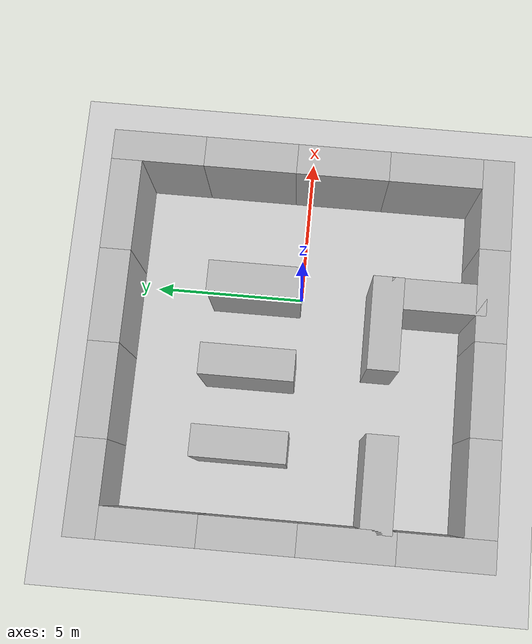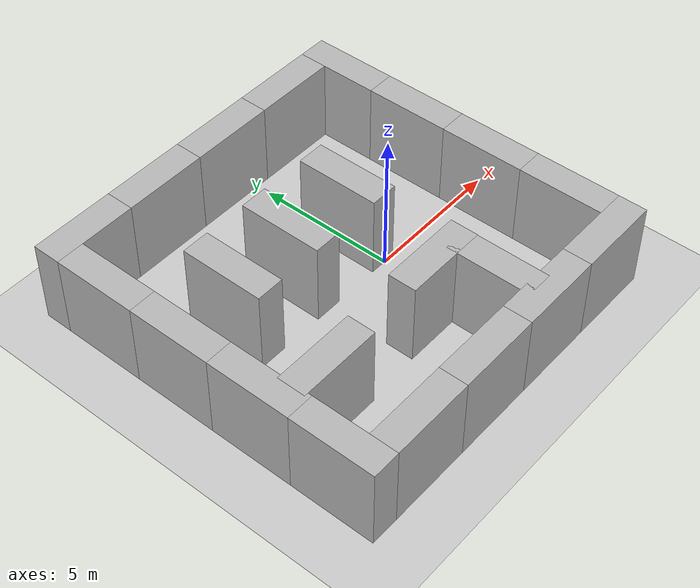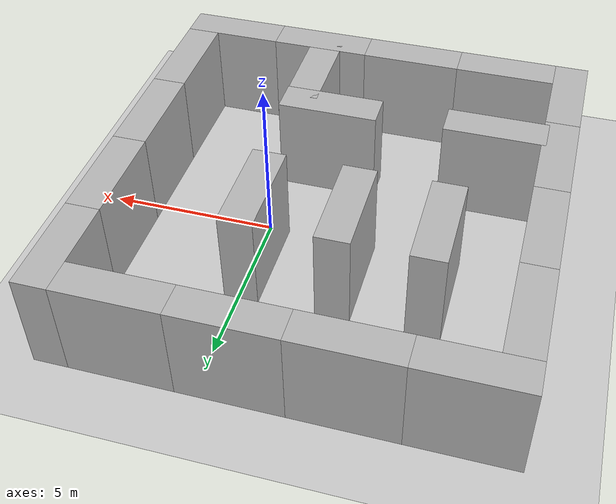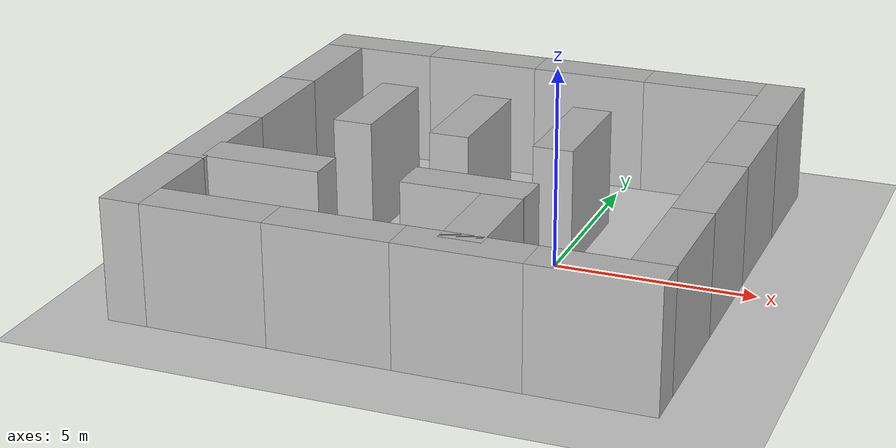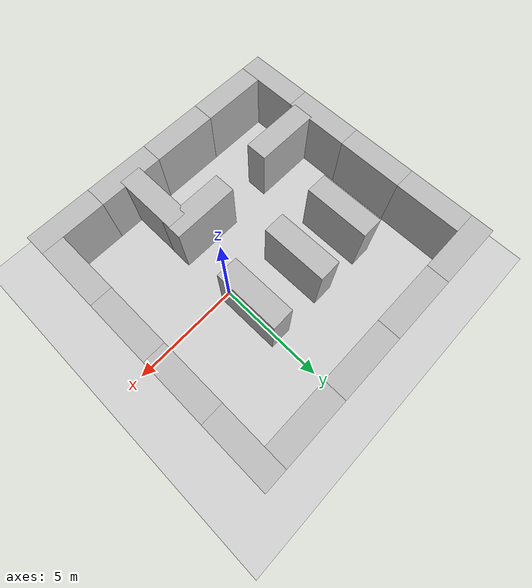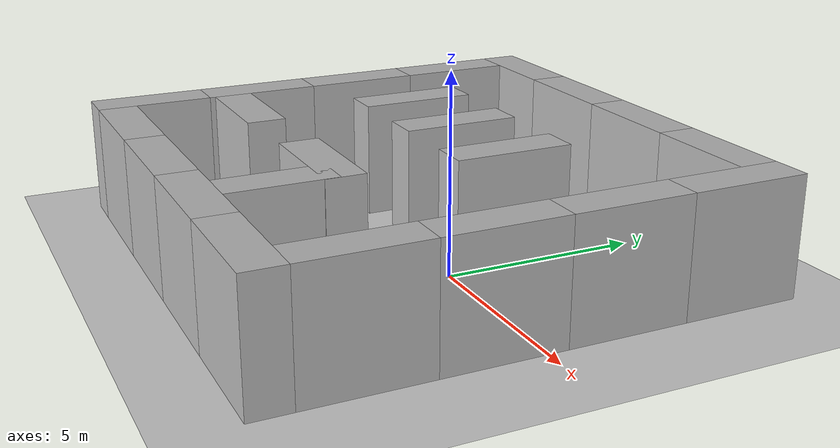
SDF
<sdf version="1.6">
 <world name="default">
  <light name="sun" type="directional">
   <pose>0 0 10 0 -0 0</pose>
   <diffuse>0.8 0.8 0.8 1</diffuse>
   <specular>0.2 0.2 0.2 1</specular>
   <attenuation>
    <range>1000</range>
    <constant>0.9</constant>
    <linear>0.01</linear>
    <quadratic>0.001</quadratic>
   </attenuation>
   <direction>-0.5 0.1 -0.9</direction>
  </light>
  <model name="ground_plane">
   <static>1</static>
   <link name="link">
    <collision name="collision">
     <geometry><plane><normal>0 0 1</normal><size>100 100</size></plane></geometry>
     <surface><friction><ode><mu>100</mu><mu2>50</mu2></ode></friction></surface>
    </collision>
    <visual name="visual">
     <cast_shadows>0</cast_shadows>
     <geometry><plane><normal>0 0 1</normal><size>100 100</size></plane></geometry>
     <material>
      <script><uri>file://media/materials/scripts/gazebo.material</uri><name>Gazebo/Grey</name></script>
     </material>
    </visual>
    <velocity_decay><linear>0</linear><angular>0</angular></velocity_decay>
   </link>
  </model>
  <physics name="default_physics" default="0" type="ode">
   <max_step_size>0.001</max_step_size>
   <real_time_factor>1</real_time_factor>
   <real_time_update_rate>1000</real_time_update_rate>
  </physics>
  <scene><ambient>0.4 0.4 0.4 1</ambient><background>0.7 0.7 0.7 1</background><shadows>1</shadows></scene>
  <spherical_coordinates>
   <surface_model>EARTH_WGS84</surface_model>
   <latitude_deg>0</latitude_deg>
   <longitude_deg>0</longitude_deg>
   <elevation>0</elevation>
   <heading_deg>0</heading_deg>
  </spherical_coordinates>
  <model name="brick_box_3x1x3">
   <static>1</static>
   <link name="chassis">
    <pose>0 0 1.5 0 -0 0</pose>
    <collision name="collision"><geometry><box><size>3 1 3</size></box></geometry></collision>
    <visual name="visual">
     <geometry><mesh><uri>model://brick_box_3x1x3/meshes/simple_box.dae</uri><scale>3 1 3</scale></mesh></geometry>
     <material>
      <script>
       <uri>model://brick_box_3x1x3/materials/scripts</uri>
       <uri>model://brick_box_3x1x3/materials/textures</uri>
       <name>BrickBox/Diffuse</name>
      </script>
     </material>
    </visual>
    <velocity_decay><linear>0</linear><angular>0</angular></velocity_decay>
   </link>
   <pose>-1 6 0 0 -0 0</pose>
  </model>
  <model name="brick_box_3x1x3_0">
   <static>1</static>
   <link name="chassis">
    <pose>0 0 1.5 0 -0 0</pose>
    <collision name="collision"><geometry><box><size>3 1 3</size></box></geometry></collision>
    <visual name="visual">
     <geometry><mesh><uri>model://brick_box_3x1x3/meshes/simple_box.dae</uri><scale>3 1 3</scale></mesh></geometry>
     <material>
      <script>
       <uri>model://brick_box_3x1x3/materials/scripts</uri>
       <uri>model://brick_box_3x1x3/materials/textures</uri>
       <name>BrickBox/Diffuse</name>
      </script>
     </material>
    </visual>
    <velocity_decay><linear>0</linear><angular>0</angular></velocity_decay>
   </link>
   <pose>2 6 0 0 -0 0</pose>
  </model>
  <model name="brick_box_3x1x3_1">
   <static>1</static>
   <link name="chassis">
    <pose>0 0 1.5 0 -0 0</pose>
    <collision name="collision"><geometry><box><size>3 1 3</size></box></geometry></collision>
    <visual name="visual">
     <geometry><mesh><uri>model://brick_box_3x1x3/meshes/simple_box.dae</uri><scale>3 1 3</scale></mesh></geometry>
     <material>
      <script>
       <uri>model://brick_box_3x1x3/materials/scripts</uri>
       <uri>model://brick_box_3x1x3/materials/textures</uri>
       <name>BrickBox/Diffuse</name>
      </script>
     </material>
    </visual>
    <velocity_decay><linear>0</linear><angular>0</angular></velocity_decay>
   </link>
   <pose>3 -6 0 0 -0 0</pose>
  </model>
  <model name="brick_box_3x1x3_2">
   <static>1</static>
   <link name="chassis">
    <pose>0 0 1.5 0 -0 0</pose>
    <collision name="collision"><geometry><box><size>3 1 3</size></box></geometry></collision>
    <visual name="visual">
     <geometry><mesh><uri>model://brick_box_3x1x3/meshes/simple_box.dae</uri><scale>3 1 3</scale></mesh></geometry>
     <material>
      <script>
       <uri>model://brick_box_3x1x3/materials/scripts</uri>
       <uri>model://brick_box_3x1x3/materials/textures</uri>
       <name>BrickBox/Diffuse</name>
      </script>
     </material>
    </visual>
    <velocity_decay><linear>0</linear><angular>0</angular></velocity_decay>
   </link>
   <pose>4 -4 0 0 0 -1.5708</pose>
  </model>
  <model name="brick_box_3x1x3_3">
   <static>1</static>
   <link name="chassis">
    <pose>0 0 1.5 0 -0 0</pose>
    <collision name="collision"><geometry><box><size>3 1 3</size></box></geometry></collision>
    <visual name="visual">
     <geometry><mesh><uri>model://brick_box_3x1x3/meshes/simple_box.dae</uri><scale>3 1 3</scale></mesh></geometry>
     <material>
      <script>
       <uri>model://brick_box_3x1x3/materials/scripts</uri>
       <uri>model://brick_box_3x1x3/materials/textures</uri>
       <name>BrickBox/Diffuse</name>
      </script>
     </material>
    </visual>
    <velocity_decay><linear>0</linear><angular>0</angular></velocity_decay>
   </link>
   <pose>4 -1 0 0 0 -1.5708</pose>
  </model>
  <model name="brick_box_3x1x3_4">
   <static>1</static>
   <link name="chassis">
    <pose>0 0 1.5 0 -0 0</pose>
    <collision name="collision"><geometry><box><size>3 1 3</size></box></geometry></collision>
    <visual name="visual">
     <geometry><mesh><uri>model://brick_box_3x1x3/meshes/simple_box.dae</uri><scale>3 1 3</scale></mesh></geometry>
     <material>
      <script>
       <uri>model://brick_box_3x1x3/materials/scripts</uri>
       <uri>model://brick_box_3x1x3/materials/textures</uri>
       <name>BrickBox/Diffuse</name>
      </script>
     </material>
    </visual>
    <velocity_decay><linear>0</linear><angular>0</angular></velocity_decay>
   </link>
   <pose>4 2 0 0 0 -1.5708</pose>
  </model>
  <model name="brick_box_3x1x3_5">
   <static>1</static>
   <link name="chassis">
    <pose>0 0 1.5 0 -0 0</pose>
    <collision name="collision"><geometry><box><size>3 1 3</size></box></geometry></collision>
    <visual name="visual">
     <geometry><mesh><uri>model://brick_box_3x1x3/meshes/simple_box.dae</uri><scale>3 1 3</scale></mesh></geometry>
     <material>
      <script>
       <uri>model://brick_box_3x1x3/materials/scripts</uri>
       <uri>model://brick_box_3x1x3/materials/textures</uri>
       <name>BrickBox/Diffuse</name>
      </script>
     </material>
    </visual>
    <velocity_decay><linear>0</linear><angular>0</angular></velocity_decay>
   </link>
   <pose>4 5 0 0 0 -1.5708</pose>
  </model>
  <model name="brick_box_3x1x3_6">
   <static>1</static>
   <link name="chassis">
    <pose>0 0 1.5 0 -0 0</pose>
    <collision name="collision"><geometry><box><size>3 1 3</size></box></geometry></collision>
    <visual name="visual">
     <geometry><mesh><uri>model://brick_box_3x1x3/meshes/simple_box.dae</uri><scale>3 1 3</scale></mesh></geometry>
     <material>
      <script>
       <uri>model://brick_box_3x1x3/materials/scripts</uri>
       <uri>model://brick_box_3x1x3/materials/textures</uri>
       <name>BrickBox/Diffuse</name>
      </script>
     </material>
    </visual>
    <velocity_decay><linear>0</linear><angular>0</angular></velocity_decay>
   </link>
   <pose>0 -6 0 0 -0 0</pose>
  </model>
  <model name="brick_box_3x1x3_7">
   <static>1</static>
   <link name="chassis">
    <pose>0 0 1.5 0 -0 0</pose>
    <collision name="collision"><geometry><box><size>3 1 3</size></box></geometry></collision>
    <visual name="visual">
     <geometry><mesh><uri>model://brick_box_3x1x3/meshes/simple_box.dae</uri><scale>3 1 3</scale></mesh></geometry>
     <material>
      <script>
       <uri>model://brick_box_3x1x3/materials/scripts</uri>
       <uri>model://brick_box_3x1x3/materials/textures</uri>
       <name>BrickBox/Diffuse</name>
      </script>
     </material>
    </visual>
    <velocity_decay><linear>0</linear><angular>0</angular></velocity_decay>
   </link>
   <pose>-3 -6 0 0 -0 0</pose>
  </model>
  <model name="brick_box_3x1x3_8">
   <static>1</static>
   <link name="chassis">
    <pose>0 0 1.5 0 -0 0</pose>
    <collision name="collision"><geometry><box><size>3 1 3</size></box></geometry></collision>
    <visual name="visual">
     <geometry><mesh><uri>model://brick_box_3x1x3/meshes/simple_box.dae</uri><scale>3 1 3</scale></mesh></geometry>
     <material>
      <script>
       <uri>model://brick_box_3x1x3/materials/scripts</uri>
       <uri>model://brick_box_3x1x3/materials/textures</uri>
       <name>BrickBox/Diffuse</name>
      </script>
     </material>
    </visual>
    <velocity_decay><linear>0</linear><angular>0</angular></velocity_decay>
   </link>
   <pose>-6 -6 0 0 -0 0</pose>
  </model>
  <model name="brick_box_3x1x3_9">
   <static>1</static>
   <link name="chassis">
    <pose>0 0 1.5 0 -0 0</pose>
    <collision name="collision"><geometry><box><size>3 1 3</size></box></geometry></collision>
    <visual name="visual">
     <geometry><mesh><uri>model://brick_box_3x1x3/meshes/simple_box.dae</uri><scale>3 1 3</scale></mesh></geometry>
     <material>
      <script>
       <uri>model://brick_box_3x1x3/materials/scripts</uri>
       <uri>model://brick_box_3x1x3/materials/textures</uri>
       <name>BrickBox/Diffuse</name>
      </script>
     </material>
    </visual>
    <velocity_decay><linear>0</linear><angular>0</angular></velocity_decay>
   </link>
   <pose>-4 6 0 0 -0 0</pose>
  </model>
  <model name="brick_box_3x1x3_10">
   <static>1</static>
   <link name="chassis">
    <pose>0 0 1.5 0 -0 0</pose>
    <collision name="collision"><geometry><box><size>3 1 3</size></box></geometry></collision>
    <visual name="visual">
     <geometry><mesh><uri>model://brick_box_3x1x3/meshes/simple_box.dae</uri><scale>3 1 3</scale></mesh></geometry>
     <material>
      <script>
       <uri>model://brick_box_3x1x3/materials/scripts</uri>
       <uri>model://brick_box_3x1x3/materials/textures</uri>
       <name>BrickBox/Diffuse</name>
      </script>
     </material>
    </visual>
    <velocity_decay><linear>0</linear><angular>0</angular></velocity_decay>
   </link>
   <pose>-7 6 0 0 -0 0</pose>
  </model>
  <model name="brick_box_3x1x3_11">
   <static>1</static>
   <link name="chassis">
    <pose>0 0 1.5 0 -0 0</pose>
    <collision name="collision"><geometry><box><size>3 1 3</size></box></geometry></collision>
    <visual name="visual">
     <geometry><mesh><uri>model://brick_box_3x1x3/meshes/simple_box.dae</uri><scale>3 1 3</scale></mesh></geometry>
     <material>
      <script>
       <uri>model://brick_box_3x1x3/materials/scripts</uri>
       <uri>model://brick_box_3x1x3/materials/textures</uri>
       <name>BrickBox/Diffuse</name>
      </script>
     </material>
    </visual>
    <velocity_decay><linear>0</linear><angular>0</angular></velocity_decay>
   </link>
   <pose>-8 -5 0 0 0 -1.5708</pose>
  </model>
  <model name="brick_box_3x1x3_12">
   <static>1</static>
   <link name="chassis">
    <pose>0 0 1.5 0 -0 0</pose>
    <collision name="collision"><geometry><box><size>3 1 3</size></box></geometry></collision>
    <visual name="visual">
     <geometry><mesh><uri>model://brick_box_3x1x3/meshes/simple_box.dae</uri><scale>3 1 3</scale></mesh></geometry>
     <material>
      <script>
       <uri>model://brick_box_3x1x3/materials/scripts</uri>
       <uri>model://brick_box_3x1x3/materials/textures</uri>
       <name>BrickBox/Diffuse</name>
      </script>
     </material>
    </visual>
    <velocity_decay><linear>0</linear><angular>0</angular></velocity_decay>
   </link>
   <pose>-8 -2 0 0 0 -1.5708</pose>
  </model>
  <model name="brick_box_3x1x3_13">
   <static>1</static>
   <link name="chassis">
    <pose>0 0 1.5 0 -0 0</pose>
    <collision name="collision"><geometry><box><size>3 1 3</size></box></geometry></collision>
    <visual name="visual">
     <geometry><mesh><uri>model://brick_box_3x1x3/meshes/simple_box.dae</uri><scale>3 1 3</scale></mesh></geometry>
     <material>
      <script>
       <uri>model://brick_box_3x1x3/materials/scripts</uri>
       <uri>model://brick_box_3x1x3/materials/textures</uri>
       <name>BrickBox/Diffuse</name>
      </script>
     </material>
    </visual>
    <velocity_decay><linear>0</linear><angular>0</angular></velocity_decay>
   </link>
   <pose>-8 1 0 0 0 -1.5708</pose>
  </model>
  <model name="brick_box_3x1x3_14">
   <static>1</static>
   <link name="chassis">
    <pose>0 0 1.5 0 -0 0</pose>
    <collision name="collision"><geometry><box><size>3 1 3</size></box></geometry></collision>
    <visual name="visual">
     <geometry><mesh><uri>model://brick_box_3x1x3/meshes/simple_box.dae</uri><scale>3 1 3</scale></mesh></geometry>
     <material>
      <script>
       <uri>model://brick_box_3x1x3/materials/scripts</uri>
       <uri>model://brick_box_3x1x3/materials/textures</uri>
       <name>BrickBox/Diffuse</name>
      </script>
     </material>
    </visual>
    <velocity_decay><linear>0</linear><angular>0</angular></velocity_decay>
   </link>
   <pose>-8 4 0 0 0 -1.5708</pose>
  </model>
  <gravity>0 0 -9.8</gravity>
  <magnetic_field>6e-06 2.3e-05 -4.2e-05</magnetic_field>
  <atmosphere type="adiabatic"/>
  <model name="brick_box_3x1x3_7_clone">
   <static>1</static>
   <link name="chassis">
    <pose>0 0 1.5 0 -0 0</pose>
    <collision name="collision"><geometry><box><size>3 1 3</size></box></geometry></collision>
    <visual name="visual">
     <geometry><mesh><uri>model://brick_box_3x1x3/meshes/simple_box.dae</uri><scale>3 1 3</scale></mesh></geometry>
     <material>
      <script>
       <uri>model://brick_box_3x1x3/materials/scripts</uri>
       <uri>model://brick_box_3x1x3/materials/textures</uri>
       <name>BrickBox/Diffuse</name>
      </script>
     </material>
    </visual>
    <velocity_decay><linear>0</linear><angular>0</angular></velocity_decay>
   </link>
   <pose>-6.14047 -2.85551 0 0 -0 0</pose>
  </model>
  <model name="brick_box_3x1x3_7_clone_0">
   <static>1</static>
   <link name="chassis">
    <pose>0 0 1.5 0 -0 0</pose>
    <collision name="collision"><geometry><box><size>3 1 3</size></box></geometry></collision>
    <visual name="visual">
     <geometry><mesh><uri>model://brick_box_3x1x3/meshes/simple_box.dae</uri><scale>3 1 3</scale></mesh></geometry>
     <material>
      <script>
       <uri>model://brick_box_3x1x3/materials/scripts</uri>
       <uri>model://brick_box_3x1x3/materials/textures</uri>
       <name>BrickBox/Diffuse</name>
      </script>
     </material>
    </visual>
    <velocity_decay><linear>0</linear><angular>0</angular></velocity_decay>
   </link>
   <pose>-1.15588 -2.7212 0 0 -0 0</pose>
  </model>
  <model name="brick_box_3x1x3_4_clone">
   <static>1</static>
   <link name="chassis">
    <pose>0 0 1.5 0 -0 0</pose>
    <collision name="collision"><geometry><box><size>3 1 3</size></box></geometry></collision>
    <visual name="visual">
     <geometry><mesh><uri>model://brick_box_3x1x3/meshes/simple_box.dae</uri><scale>3 1 3</scale></mesh></geometry>
     <material>
      <script>
       <uri>model://brick_box_3x1x3/materials/scripts</uri>
       <uri>model://brick_box_3x1x3/materials/textures</uri>
       <name>BrickBox/Diffuse</name>
      </script>
     </material>
    </visual>
    <velocity_decay><linear>0</linear><angular>0</angular></velocity_decay>
   </link>
   <pose>-0.171526 -4.32472 0 0 0 -1.5708</pose>
  </model>
  <model name="brick_box_3x1x3_4_clone_0">
   <static>1</static>
   <link name="chassis">
    <pose>0 0 1.5 0 -0 0</pose>
    <collision name="collision"><geometry><box><size>3 1 3</size></box></geometry></collision>
    <visual name="visual">
     <geometry><mesh><uri>model://brick_box_3x1x3/meshes/simple_box.dae</uri><scale>3 1 3</scale></mesh></geometry>
     <material>
      <script>
       <uri>model://brick_box_3x1x3/materials/scripts</uri>
       <uri>model://brick_box_3x1x3/materials/textures</uri>
       <name>BrickBox/Diffuse</name>
      </script>
     </material>
    </visual>
    <velocity_decay><linear>0</linear><angular>0</angular></velocity_decay>
   </link>
   <pose>-0.096448 1.50411 0 0 0 -1.5708</pose>
  </model>
  <model name="brick_box_3x1x3_4_clone_1">
   <static>1</static>
   <link name="chassis">
    <pose>0 0 1.5 0 -0 0</pose>
    <collision name="collision"><geometry><box><size>3 1 3</size></box></geometry></collision>
    <visual name="visual">
     <geometry><mesh><uri>model://brick_box_3x1x3/meshes/simple_box.dae</uri><scale>3 1 3</scale></mesh></geometry>
     <material>
      <script>
       <uri>model://brick_box_3x1x3/materials/scripts</uri>
       <uri>model://brick_box_3x1x3/materials/textures</uri>
       <name>BrickBox/Diffuse</name>
      </script>
     </material>
    </visual>
    <velocity_decay><linear>0</linear><angular>0</angular></velocity_decay>
   </link>
   <pose>-2.75015 1.49691 0 0 0 -1.5708</pose>
  </model>
  <model name="brick_box_3x1x3_4_clone_2">
   <static>1</static>
   <link name="chassis">
    <pose>0 0 1.5 0 -0 0</pose>
    <collision name="collision"><geometry><box><size>3 1 3</size></box></geometry></collision>
    <visual name="visual">
     <geometry><mesh><uri>model://brick_box_3x1x3/meshes/simple_box.dae</uri><scale>3 1 3</scale></mesh></geometry>
     <material>
      <script>
       <uri>model://brick_box_3x1x3/materials/scripts</uri>
       <uri>model://brick_box_3x1x3/materials/textures</uri>
       <name>BrickBox/Diffuse</name>
      </script>
     </material>
    </visual>
    <velocity_decay><linear>0</linear><angular>0</angular></velocity_decay>
   </link>
   <pose>-5.29328 1.50663 0 0 0 -1.5708</pose>
  </model>
 </world>
</sdf>
